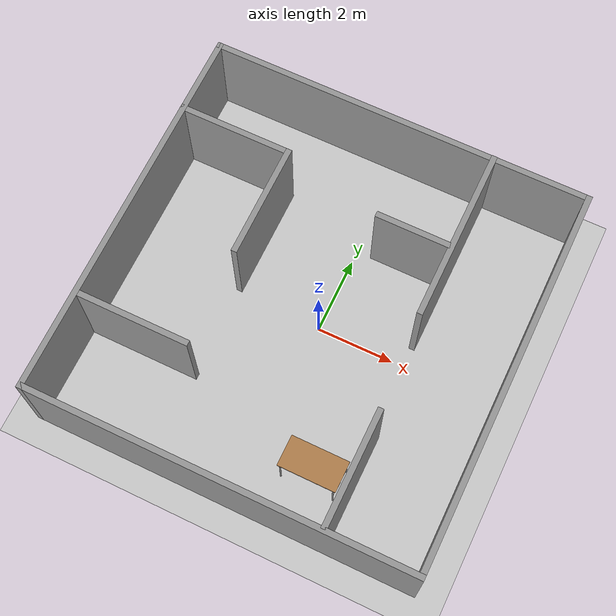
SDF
<sdf version="1.7">
 <world name="default">
  <model name="ground_plane">
   <static>1</static>
   <link name="link">
    <collision name="collision">
     <geometry><plane><normal>0 0 1</normal><size>100 100</size></plane></geometry>
     <surface><friction><ode><mu>100</mu><mu2>50</mu2></ode></friction></surface>
    </collision>
    <visual name="visual">
     <cast_shadows>0</cast_shadows>
     <geometry><plane><normal>0 0 1</normal><size>100 100</size></plane></geometry>
     <material>
      <script><uri>file://media/materials/scripts/gazebo.material</uri><name>Gazebo/Grey</name></script>
     </material>
    </visual>
   </link>
  </model>
  <model name="compile_office">
   <pose>-0.16871 0.01325 0 0 -0 0</pose>
   <link name="Wall_12">
    <collision name="Wall_12_Collision">
     <geometry><box><size>2.9737 0.15 2.5</size></box></geometry>
     <pose>0 0 1.25 0 -0 0</pose>
    </collision>
    <visual name="Wall_12_Visual">
     <pose>0 0 1.25 0 -0 0</pose>
     <geometry><box><size>2.9737 0.15 2.5</size></box></geometry>
     <material>
      <script><uri>file://media/materials/scripts/gazebo.material</uri><name>Gazebo/Grey</name></script>
      <ambient>1 1 1 1</ambient>
     </material>
     <meta><layer>0</layer></meta>
    </visual>
    <pose>-2.07655 1.54724 0 0 -0 -1.5708</pose>
   </link>
   <link name="Wall_16">
    <collision name="Wall_16_Collision">
     <geometry><box><size>3 0.15 2.5</size></box></geometry>
     <pose>0 0 1.25 0 -0 0</pose>
    </collision>
    <visual name="Wall_16_Visual">
     <pose>0 0 1.25 0 -0 0</pose>
     <geometry><box><size>3 0.15 2.5</size></box></geometry>
     <material>
      <script><uri>file://media/materials/scripts/gazebo.material</uri><name>Gazebo/Grey</name></script>
      <ambient>1 1 1 1</ambient>
     </material>
     <meta><layer>0</layer></meta>
    </visual>
    <pose>2.60858 -3.41405 0 0 -0 1.5708</pose>
   </link>
   <link name="Wall_18">
    <collision name="Wall_18_Collision">
     <geometry><box><size>4.5 0.15 2.5</size></box></geometry>
     <pose>0 0 1.25 0 -0 0</pose>
    </collision>
    <visual name="Wall_18_Visual">
     <pose>0 0 1.25 0 -0 0</pose>
     <geometry><box><size>4.5 0.15 2.5</size></box></geometry>
     <material>
      <script><uri>file://media/materials/scripts/gazebo.material</uri><name>Gazebo/Grey</name></script>
      <ambient>1 1 1 1</ambient>
     </material>
     <meta><layer>0</layer></meta>
    </visual>
    <pose>2.47708 2.75388 0 0 -0 1.5708</pose>
   </link>
   <link name="Wall_23">
    <collision name="Wall_23_Collision">
     <geometry><box><size>3 0.15 2.5</size></box></geometry>
     <pose>0 0 1.25 0 -0 0</pose>
    </collision>
    <visual name="Wall_23_Visual">
     <pose>0 0 1.25 0 -0 0</pose>
     <geometry><box><size>3 0.15 2.5</size></box></geometry>
     <material>
      <script><uri>file://media/materials/scripts/gazebo.material</uri><name>Gazebo/Grey</name></script>
      <ambient>1 1 1 1</ambient>
     </material>
     <meta><layer>0</layer></meta>
    </visual>
    <pose>-3.47525 -2.41939 0 0 -0 0</pose>
   </link>
   <link name="Wall_25">
    <collision name="Wall_25_Collision">
     <geometry><box><size>2 0.15 2.5</size></box></geometry>
     <pose>0 0 1.25 0 -0 0</pose>
    </collision>
    <visual name="Wall_25_Visual">
     <pose>0 0 1.25 0 -0 0</pose>
     <geometry><box><size>2 0.15 2.5</size></box></geometry>
     <material>
      <script><uri>file://media/materials/scripts/gazebo.material</uri><name>Gazebo/Grey</name></script>
      <ambient>1 1 1 1</ambient>
     </material>
     <meta><layer>0</layer></meta>
    </visual>
    <pose>1.52578 2.38048 0 0 -0 3.14159</pose>
   </link>
   <link name="Wall_27">
    <collision name="Wall_27_Collision">
     <geometry><box><size>3 0.15 2.5</size></box></geometry>
     <pose>0 0 1.25 0 -0 0</pose>
    </collision>
    <visual name="Wall_27_Visual">
     <pose>0 0 1.25 0 -0 0</pose>
     <geometry><box><size>3 0.15 2.5</size></box></geometry>
     <material>
      <script><uri>file://media/materials/scripts/gazebo.material</uri><name>Gazebo/Grey</name></script>
      <ambient>1 1 1 1</ambient>
     </material>
     <meta><layer>0</layer></meta>
    </visual>
    <pose>-3.50155 2.95909 0 0 -0 3.14159</pose>
   </link>
   <link name="Wall_4">
    <collision name="Wall_4_Collision">
     <geometry><box><size>10 0.15 2.5</size></box></geometry>
     <pose>0 0 1.25 0 -0 0</pose>
    </collision>
    <visual name="Wall_4_Visual">
     <pose>0 0 1.25 0 -0 0</pose>
     <geometry><box><size>10 0.15 2.5</size></box></geometry>
     <material>
      <script><uri>file://media/materials/scripts/gazebo.material</uri><name>Gazebo/Grey</name></script>
      <ambient>1 1 1 1</ambient>
     </material>
     <meta><layer>0</layer></meta>
    </visual>
    <pose>4.92655 -0.003881 0 0 -0 -1.5708</pose>
   </link>
   <link name="Wall_5">
    <collision name="Wall_5_Collision">
     <geometry><box><size>10 0.15 2.5</size></box></geometry>
     <pose>0 0 1.25 0 -0 0</pose>
    </collision>
    <visual name="Wall_5_Visual">
     <pose>0 0 1.25 0 -0 0</pose>
     <geometry><box><size>10 0.15 2.5</size></box></geometry>
     <material>
      <script><uri>file://media/materials/scripts/gazebo.material</uri><name>Gazebo/Grey</name></script>
      <ambient>1 1 1 1</ambient>
     </material>
     <meta><layer>0</layer></meta>
    </visual>
    <pose>0.001553 -4.92888 0 0 -0 3.14159</pose>
   </link>
   <link name="Wall_6">
    <collision name="Wall_6_Collision">
     <geometry><box><size>10 0.15 2.5</size></box></geometry>
     <pose>0 0 1.25 0 -0 0</pose>
    </collision>
    <visual name="Wall_6_Visual">
     <pose>0 0 1.25 0 -0 0</pose>
     <geometry><box><size>10 0.15 2.5</size></box></geometry>
     <material>
      <script><uri>file://media/materials/scripts/gazebo.material</uri><name>Gazebo/Grey</name></script>
      <ambient>1 1 1 1</ambient>
     </material>
     <meta><layer>0</layer></meta>
    </visual>
    <pose>-4.92345 -0.003881 0 0 -0 1.5708</pose>
   </link>
   <link name="Wall_9">
    <collision name="Wall_9_Collision">
     <geometry><box><size>10 0.15 2.5</size></box></geometry>
     <pose>0 0 1.25 0 -0 0</pose>
    </collision>
    <visual name="Wall_9_Visual">
     <pose>0 0 1.25 0 -0 0</pose>
     <geometry><box><size>10 0.15 2.5</size></box></geometry>
     <material>
      <script><uri>file://media/materials/scripts/gazebo.material</uri><name>Gazebo/Grey</name></script>
      <ambient>1 1 1 1</ambient>
     </material>
     <meta><layer>0</layer></meta>
    </visual>
    <pose>0.001553 4.92112 0 0 -0 0</pose>
   </link>
   <static>1</static>
  </model>
  <model name="table_0">
   <static>1</static>
   <link name="link">
    <collision name="surface">
     <pose>0 0 1 0 -0 0</pose>
     <geometry><box><size>1.5 0.8 0.03</size></box></geometry>
     <surface><friction><ode><mu>0.6</mu><mu2>0.6</mu2></ode></friction></surface>
    </collision>
    <visual name="visual1">
     <pose>0 0 1 0 -0 0</pose>
     <geometry><box><size>1.5 0.8 0.03</size></box></geometry>
     <material>
      <script><uri>file://media/materials/scripts/gazebo.material</uri><name>Gazebo/Wood</name></script>
     </material>
    </visual>
    <collision name="front_left_leg">
     <pose>0.68 0.38 0.5 0 -0 0</pose>
     <geometry><cylinder><radius>0.02</radius><length>1</length></cylinder></geometry>
    </collision>
    <visual name="front_left_leg">
     <pose>0.68 0.38 0.5 0 -0 0</pose>
     <geometry><cylinder><radius>0.02</radius><length>1</length></cylinder></geometry>
     <material>
      <script><uri>file://media/materials/scripts/gazebo.material</uri><name>Gazebo/Grey</name></script>
     </material>
    </visual>
    <collision name="front_right_leg">
     <pose>0.68 -0.38 0.5 0 -0 0</pose>
     <geometry><cylinder><radius>0.02</radius><length>1</length></cylinder></geometry>
    </collision>
    <visual name="front_right_leg">
     <pose>0.68 -0.38 0.5 0 -0 0</pose>
     <geometry><cylinder><radius>0.02</radius><length>1</length></cylinder></geometry>
     <material>
      <script><uri>file://media/materials/scripts/gazebo.material</uri><name>Gazebo/Grey</name></script>
     </material>
    </visual>
    <collision name="back_right_leg">
     <pose>-0.68 -0.38 0.5 0 -0 0</pose>
     <geometry><cylinder><radius>0.02</radius><length>1</length></cylinder></geometry>
    </collision>
    <visual name="back_right_leg">
     <pose>-0.68 -0.38 0.5 0 -0 0</pose>
     <geometry><cylinder><radius>0.02</radius><length>1</length></cylinder></geometry>
     <material>
      <script><uri>file://media/materials/scripts/gazebo.material</uri><name>Gazebo/Grey</name></script>
     </material>
    </visual>
    <collision name="back_left_leg">
     <pose>-0.68 0.38 0.5 0 -0 0</pose>
     <geometry><cylinder><radius>0.02</radius><length>1</length></cylinder></geometry>
    </collision>
    <visual name="back_left_leg">
     <pose>-0.68 0.38 0.5 0 -0 0</pose>
     <geometry><cylinder><radius>0.02</radius><length>1</length></cylinder></geometry>
     <material>
      <script><uri>file://media/materials/scripts/gazebo.material</uri><name>Gazebo/Grey</name></script>
     </material>
    </visual>
   </link>
   <pose>1.46888 -3.36842 0 0 -0 0</pose>
  </model>
 </world>
</sdf>
